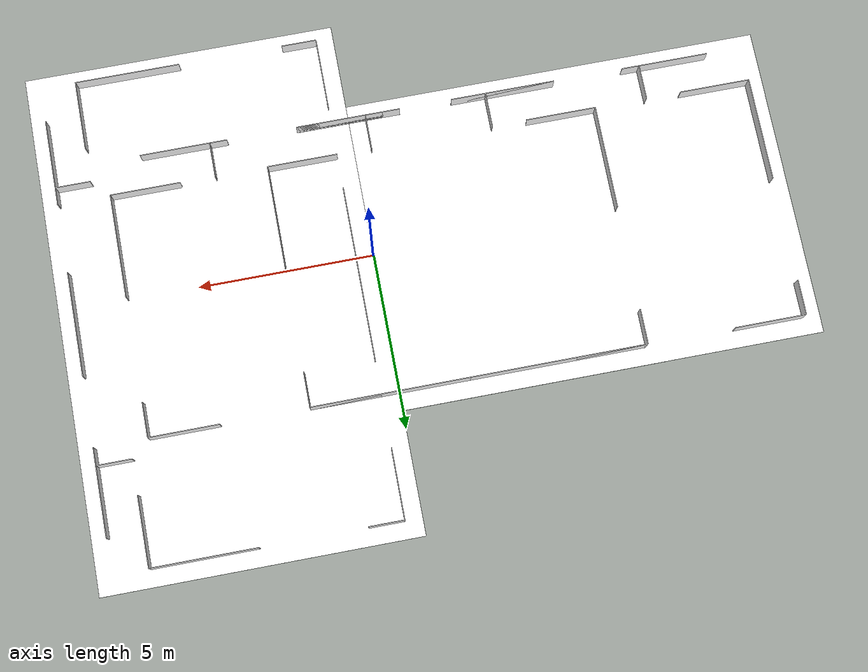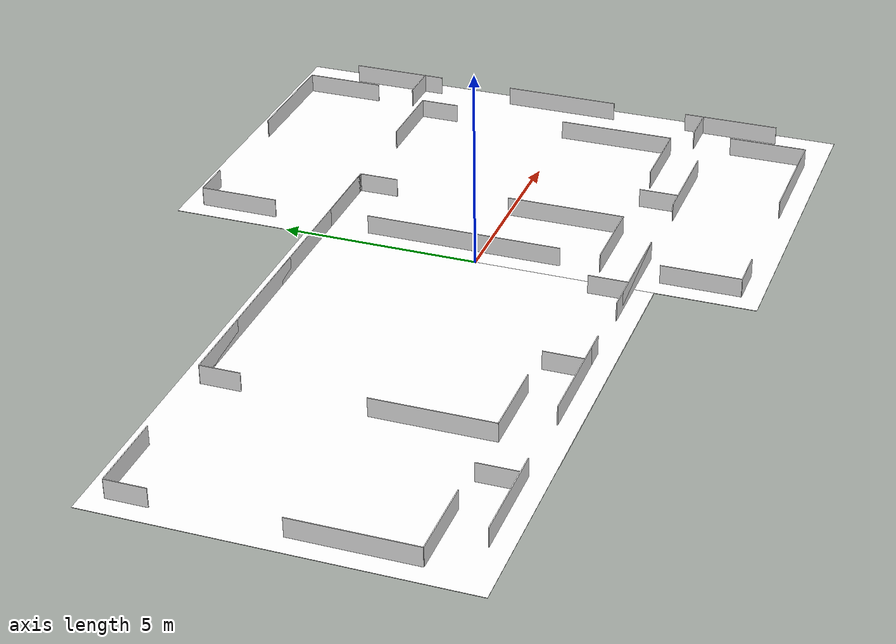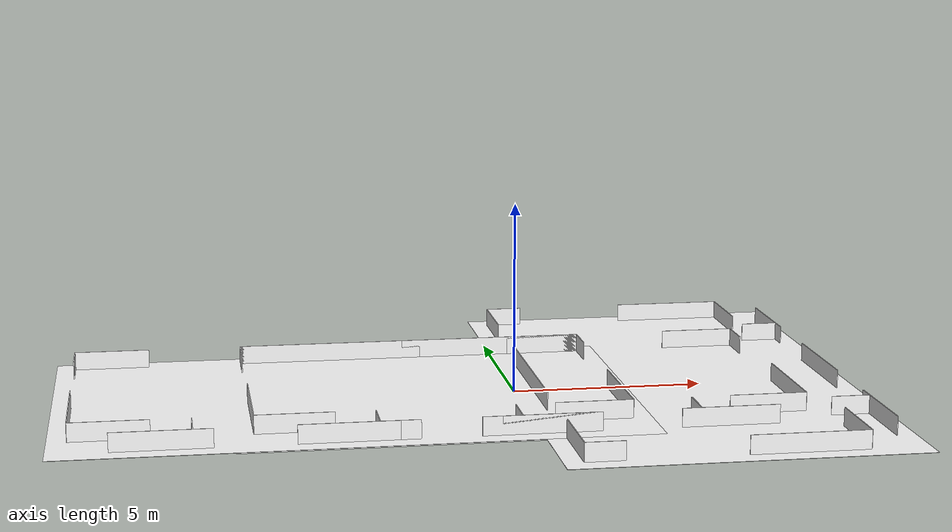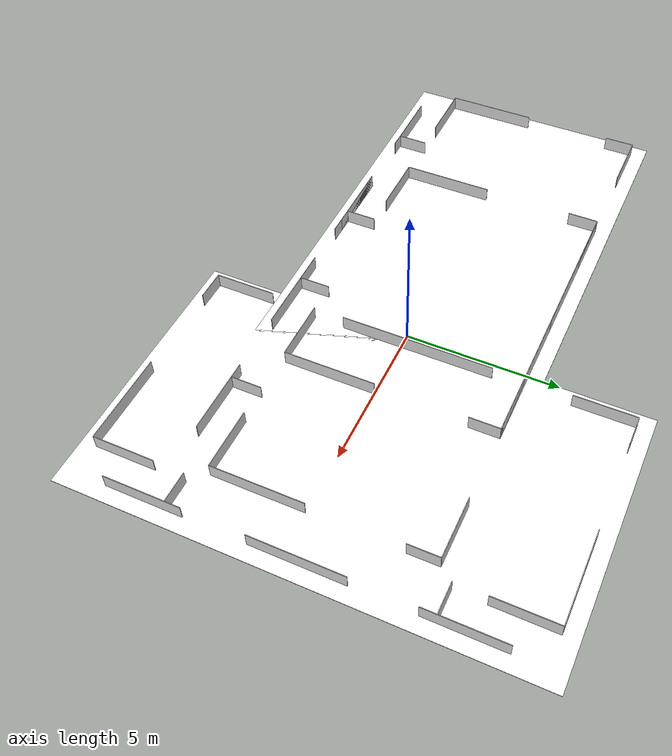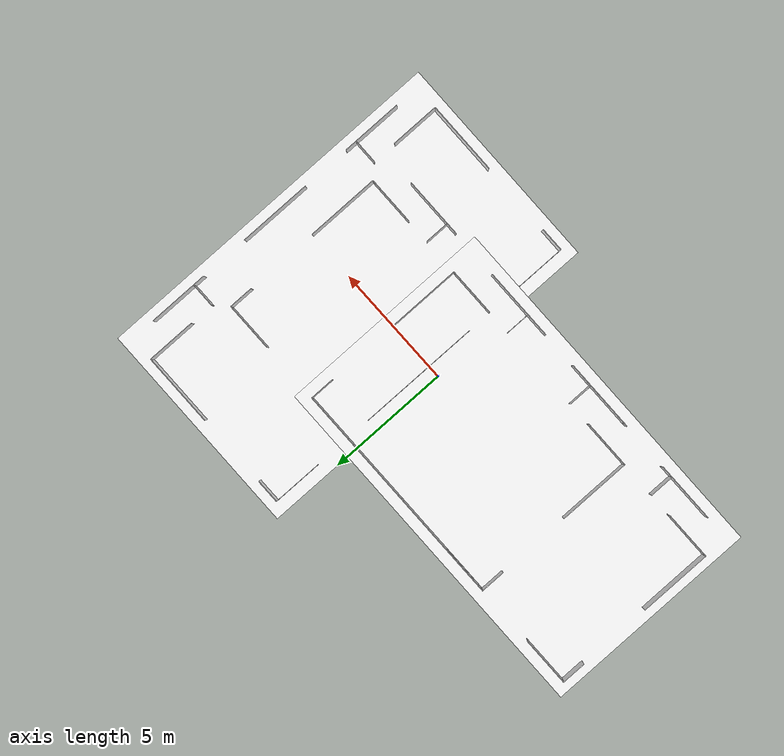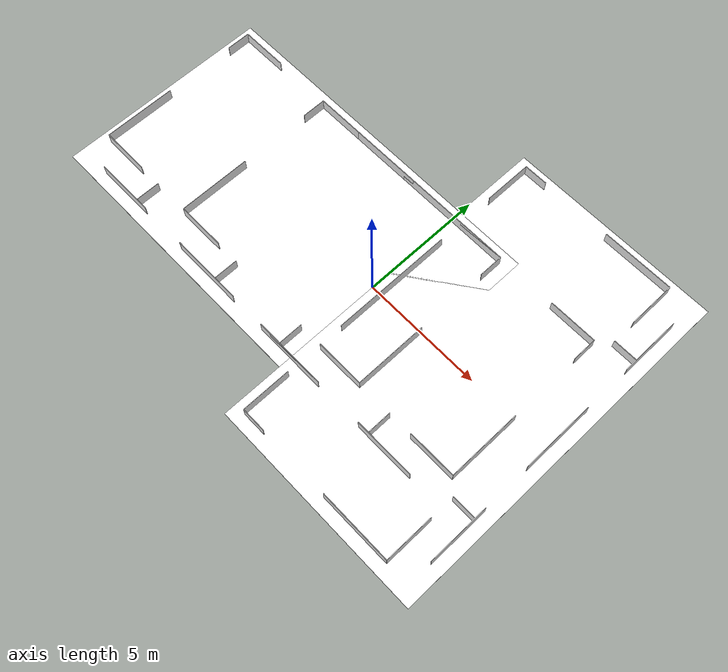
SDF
<?xml version="1.0" ?>
<sdf version="1.9">
  <world name="world_demo">

    <!-- Physics -->
    <physics name="1ms" type="ignored">
      <max_step_size>0.004</max_step_size>
      <real_time_factor>1.0</real_time_factor>
    </physics>

    <!-- Gazebo plugins -->
    <plugin
      filename="ignition-gazebo-physics-system"
      name="ignition::gazebo::systems::Physics">
    </plugin>
    <plugin
      filename="ignition-gazebo-user-commands-system"
      name="ignition::gazebo::systems::UserCommands">
    </plugin>
    <plugin
      filename="ignition-gazebo-scene-broadcaster-system"
      name="ignition::gazebo::systems::SceneBroadcaster">
    </plugin>
    <plugin
      filename="ignition-gazebo-contact-system"
      name="ignition::gazebo::systems::Contact">
    </plugin>

    <!-- GUI -->
    <gui fullscreen="0">
        <plugin filename="GzScene3D" name="3D View">
            <ignition-gui>
                <title>3D View</title>
                <property type="bool" key="showTitleBar">false</property>
                <property type="string" key="state">docked</property>
            </ignition-gui>

            <engine>ogre2</engine>
            <scene>scene</scene>
            <ambient_light>1.0 1.0 1.0</ambient_light>
            <background_color>0.8 0.8 0.8</background_color>
            <camera_pose>1 -2 9.5 0 1.1 1.56</camera_pose>
        </plugin>

        <!-- World control -->
        <plugin filename="WorldControl" name="World control">
            <ignition-gui>
                <title>World control</title>
                <property type="bool" key="showTitleBar">false</property>
                <property type="bool" key="resizable">false</property>
                <property type="double" key="height">72</property>
                <property type="double" key="width">121</property>
                <property type="double" key="z">1</property>

                <property type="string" key="state">floating</property>
                <anchors target="3D View">
                <line own="left" target="left"/>
                <line own="bottom" target="bottom"/>
                </anchors>
            </ignition-gui>

            <play_pause>true</play_pause>
            <step>true</step>
            <start_paused>true</start_paused>
            <service>/world/world_demo/control</service>
            <stats_topic>/world/world_demo/stats</stats_topic>
        </plugin>

        <!-- Entity tree -->
        <plugin filename="EntityTree" name="Entity tree">
        </plugin>
    </gui>

    <light type="directional" name="sun">
      <cast_shadows>true</cast_shadows>
      <pose>0 0 10 0 0 0</pose>
      <diffuse>0.8 0.8 0.8 1</diffuse>
      <specular>0.2 0.2 0.2 1</specular>
      <attenuation>
          <range>1000</range>
          <constant>0.9</constant>
          <linear>0.01</linear>
          <quadratic>0.001</quadratic>
      </attenuation>
      <direction>-0.5 0.1 -0.9</direction>
    </light>

    <include>
      <uri>model://field/model.sdf</uri>
      <pose>0 0 0 0 0 0</pose>
    </include>

    <include>
      <uri>model://robotino3/model.sdf</uri>
      <pose>-4.5 0 0 0 0 0</pose>
    </include>

    <include>
      <uri>model://mps_ring/model.sdf</uri>
      <pose>4.5 0.5 0 0 0 1.57</pose>
    </include>

  </world>
</sdf>

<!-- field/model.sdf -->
<sdf version="1.5">
  <model name="Logistics League Field 2017">
    <pose>0 4 0 0 0 0</pose>
    <static>true</static>
    <link name="field">
      <pose>0 0 0.01 0 0 0</pose>
      <collision name="collision">
        <geometry>
          <plane>
            <normal>0 0 1</normal>
            <size>15 9</size>
          </plane>
        </geometry>
        <surface>
          <friction>
            <ode>
              <mu>100</mu>
              <mu2>50</mu2>
            </ode>
          </friction>
        </surface>
      </collision>
      <visual name="carpet">
        <cast_shadows>false</cast_shadows>
        <geometry>
          <plane>
            <normal>0 0 1</normal>
            <size>15 9</size>
          </plane>
        </geometry>
        <material>
	  <ambient>1 1 1 1</ambient>
	  <diffuse>1 1 1 1</diffuse>
	  <specular>0.2 0.2 0.2 1.0</specular>
	</material>
      </visual>
    </link>

    <link name="wall_bottom_middle_left_down">
      <pose>-4 -3.5 0.25 0 0 0</pose>
      <visual name="wall_bottom_middle_left_down-visual">
        <geometry>
          <box>
            <size>.02 1 .5</size>
          </box>
        </geometry>
        <cast_shadows>false</cast_shadows>
        <material>
	  <ambient>1 1 1 1</ambient>
	  <diffuse>1 1 1 1</diffuse>
	  <specular>0.2 0.2 0.2 1.0</specular>
	</material>
      </visual>
      <collision name="wall_bottom_middle_left_down-collision">
        <geometry>
          <box>
            <size>.02 1 .5</size>
          </box>
        </geometry>
      </collision>
    </link>

    <link name="wall_bottom_middle_left_outer">
      <pose>-4.75 -4 0.25 0 0 1.570796327</pose>
      <visual name="wall_bottom_middle_left_outer-visual">
        <geometry>
          <box>
            <size>.02 2.5 .5</size>
          </box>
        </geometry>
        <cast_shadows>false</cast_shadows>
        <material>
	  <ambient>1 1 1 1</ambient>
	  <diffuse>1 1 1 1</diffuse>
	  <specular>0.2 0.2 0.2 1.0</specular>
	</material>
      </visual>
      <collision name="wall_bottom_middle_left_outer-collision">
        <geometry>
          <box>
            <size>.02 2.5 .5</size>
          </box>
        </geometry>
      </collision>
    </link>

    <link name="wall_bottom_left">
      <pose>-6 -3 0.25 0 0 1.570796327</pose>
      <visual name="wall_bottom_left-visual">
        <geometry>
          <box>
            <size>.02 2 .5</size>
          </box>
        </geometry>
        <cast_shadows>false</cast_shadows>
        <material>
	  <ambient>1 1 1 1</ambient>
	  <diffuse>1 1 1 1</diffuse>
	  <specular>0.2 0.2 0.2 1.0</specular>
	</material>
      </visual>
      <collision name="wall_bottom_left-collision">
        <geometry>
          <box>
            <size>.02 2 .5</size>
          </box>
        </geometry>
      </collision>
    </link>

    <link name="wall_bottom_middle">
      <pose>0 -4 0.25 0 0 1.570796327</pose>
      <visual name="wall_bottom_middle_right-visual">
        <geometry>
          <box>
            <size>.02 3 .5</size>
          </box>
        </geometry>
        <cast_shadows>false</cast_shadows>
        <material>
	  <ambient>1 1 1 1</ambient>
	  <diffuse>1 1 1 1</diffuse>
	  <specular>0.2 0.2 0.2 1.0</specular>
	</material>
      </visual>
      <collision name="wall_bottom_middle_right-collision">
        <geometry>
          <box>
            <size>.02 3 .5</size>
          </box>
        </geometry>
      </collision>
    </link>

    <link name="wall_bottom_middle_right_down">
      <pose>4 -3.5 0.25 0 0 0</pose>
      <visual name="wall_bottom_middle_right_down-visual">
        <geometry>
          <box>
            <size>.02 1 .5</size>
          </box>
        </geometry>
        <cast_shadows>false</cast_shadows>
        <material>
	  <ambient>1 1 1 1</ambient>
	  <diffuse>1 1 1 1</diffuse>
	  <specular>0.2 0.2 0.2 1.0</specular>
	</material>
      </visual>
      <collision name="wall_bottom_middle_right_down-collision">
        <geometry>
          <box>
            <size>.02 1 .5</size>
          </box>
        </geometry>
      </collision>
    </link>

    <link name="wall_bottom_middle_right_outer">
      <pose>4.75 -4 0.25 0 0 1.570796327</pose>
      <visual name="wall_bottom_middle_right_outer-visual">
        <geometry>
          <box>
            <size>.02 2.5 .5</size>
          </box>
        </geometry>
        <cast_shadows>false</cast_shadows>
        <material>
	  <ambient>1 1 1 1</ambient>
	  <diffuse>1 1 1 1</diffuse>
	  <specular>0.2 0.2 0.2 1.0</specular>
	</material>
      </visual>
      <collision name="wall_bottom_middle_right_outer-collision">
        <geometry>
          <box>
            <size>.02 2.5 .5</size>
          </box>
        </geometry>
      </collision>
    </link>

    <link name="wall_bottom_right">
      <pose>6 -3 0.25 0 0 1.570796327</pose>
      <visual name="wall_bottom_right-visual">
        <geometry>
          <box>
            <size>.02 2 .5</size>
          </box>
        </geometry>
        <cast_shadows>false</cast_shadows>
        <material>
	  <ambient>1 1 1 1</ambient>
	  <diffuse>1 1 1 1</diffuse>
	  <specular>0.2 0.2 0.2 1.0</specular>
	</material>
      </visual>
      <collision name="wall_bottom_right-collision">
        <geometry>
          <box>
            <size>.02 2 .5</size>
          </box>
        </geometry>
      </collision>
    </link>

    <link name="wall_left_bottom">
      <pose>-7 -1.5 0.25 0 0 0</pose>
      <visual name="wall_left_bottom-visual">
        <geometry>
          <box>
            <size>.02 3 .5</size>
          </box>
        </geometry>
        <cast_shadows>false</cast_shadows>
        <material>
	  <ambient>1 1 1 1</ambient>
	  <diffuse>1 1 1 1</diffuse>
	  <specular>0.2 0.2 0.2 1.0</specular>
	</material>
      </visual>
      <collision name="wall_left_bottom-collision">
        <geometry>
          <box>
            <size>.02 3 .5</size>
          </box>
        </geometry>
      </collision>
    </link>

    <link name="wall_left_top">
      <pose>-7 3.5 0.25 0 0 0</pose>
      <visual name="wall_left_top-visual">
        <geometry>
          <box>
            <size>.02 1 .5</size>
          </box>
        </geometry>
        <cast_shadows>false</cast_shadows>
        <material>
	  <ambient>1 1 1 1</ambient>
	  <diffuse>1 1 1 1</diffuse>
	  <specular>0.2 0.2 0.2 1.0</specular>
	</material>
      </visual>
      <collision name="wall_left_top-collision">
        <geometry>
          <box>
            <size>.02 1 .5</size>
          </box>
        </geometry>
      </collision>
    </link>

    <link name="wall_right_bottom">
      <pose>7 -1.5 0.25 0 0 0</pose>
      <visual name="wall_right_bottom-visual">
        <geometry>
          <box>
            <size>.02 3 .5</size>
          </box>
        </geometry>
        <cast_shadows>false</cast_shadows>
        <material>
	  <ambient>1 1 1 1</ambient>
	  <diffuse>1 1 1 1</diffuse>
	  <specular>0.2 0.2 0.2 1.0</specular>
	</material>
      </visual>
      <collision name="wall_right_bottom-collision">
        <geometry>
          <box>
            <size>.02 3 .5</size>
          </box>
        </geometry>
      </collision>
    </link>

    <link name="wall_right_top">
      <pose>7 3.5 0.25 0 0 0</pose>
      <visual name="wall_right_top-visual">
        <geometry>
          <box>
            <size>.02 1 .5</size>
          </box>
        </geometry>
        <cast_shadows>false</cast_shadows>
        <material>
	  <ambient>1 1 1 1</ambient>
	  <diffuse>1 1 1 1</diffuse>
	  <specular>0.2 0.2 0.2 1.0</specular>
	</material>
      </visual>
      <collision name="wall_right_top-collision">
        <geometry>
          <box>
            <size>.02 1 .5</size>
          </box>
        </geometry>
      </collision>
    </link>

    <link name="wall_top_middle">
      <pose>0 4 0.25 0 0 1.570796327</pose>
      <visual name="wall_top_middle-visual">
        <geometry>
          <box>
            <size>.02 5 .5</size>
          </box>
        </geometry>
        <cast_shadows>false</cast_shadows>
        <material>
	  <ambient>1 1 1 1</ambient>
	  <diffuse>1 1 1 1</diffuse>
	  <specular>0.2 0.2 0.2 1.0</specular>
	</material>
      </visual>
      <collision name="wall_top_middle-collision">
        <geometry>
          <box>
            <size>.02 5 .5</size>
          </box>
        </geometry>
      </collision>
    </link>

    <link name="wall_top_left">
      <pose>-6 4 0.25 0 0 1.570796327</pose>
      <visual name="wall_top_left-visual">
        <geometry>
          <box>
            <size>.02 2 .5</size>
          </box>
        </geometry>
        <cast_shadows>false</cast_shadows>
        <material>
	  <ambient>1 1 1 1</ambient>
	  <diffuse>1 1 1 1</diffuse>
	  <specular>0.2 0.2 0.2 1.0</specular>
	</material>
      </visual>
      <collision name="wall_top_left-collision">
        <geometry>
          <box>
            <size>.02 2 .5</size>
          </box>
        </geometry>
      </collision>
    </link>

    <link name="wall_top_right">
      <pose>6 4 0.25 0 0 1.570796327</pose>
      <visual name="wall_top_right-visual">
        <geometry>
          <box>
             <size>.02 2 .5</size>
          </box>
        </geometry>
        <cast_shadows>false</cast_shadows>
        <material>
	  <ambient>1 1 1 1</ambient>
	  <diffuse>1 1 1 1</diffuse>
	  <specular>0.2 0.2 0.2 1.0</specular>
	</material>
      </visual>
      <collision name="wall_top_right-collision">
        <geometry>
          <box>
            <size>.02 2 .5</size>
          </box>
        </geometry>
      </collision>
    </link>

  </model>
</sdf>
